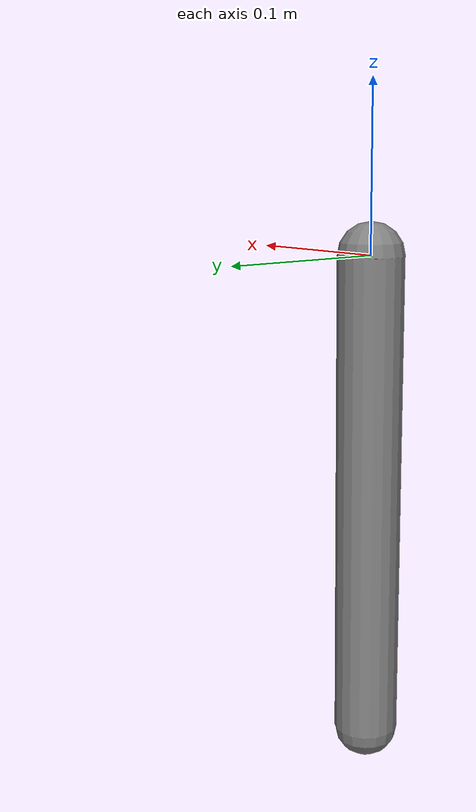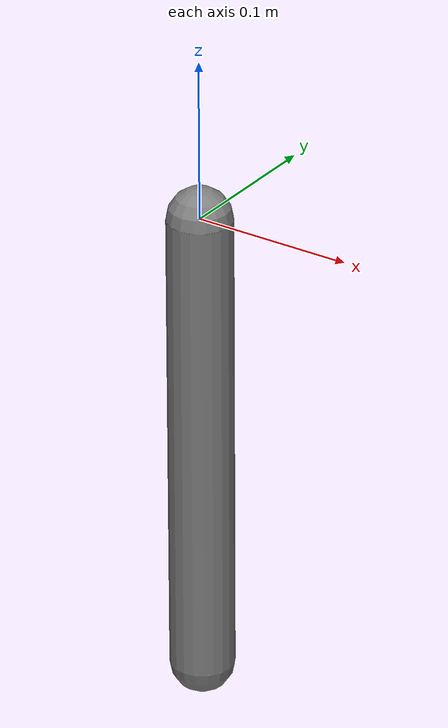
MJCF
<mujoco>
          <option timestep="0.01" integrator="implicitfast"/>
          <worldbody>
            <body name="b">
              <joint name="j" type="hinge" axis="0 1 0"/>
              <geom type="capsule" fromto="0 0 0 0 0 -0.3" size="0.02" mass="1"/>
            </body>
          </worldbody>
          <actuator>
            <general name="hill" joint="j" dyntype="hillmuscle"
                     gainprm="0.75 1.05 500 200 1.0 0.0 10.0 0.0 35.0"
                     dynprm="0.01 0.04 0.0"/>
          </actuator>
        </mujoco>
